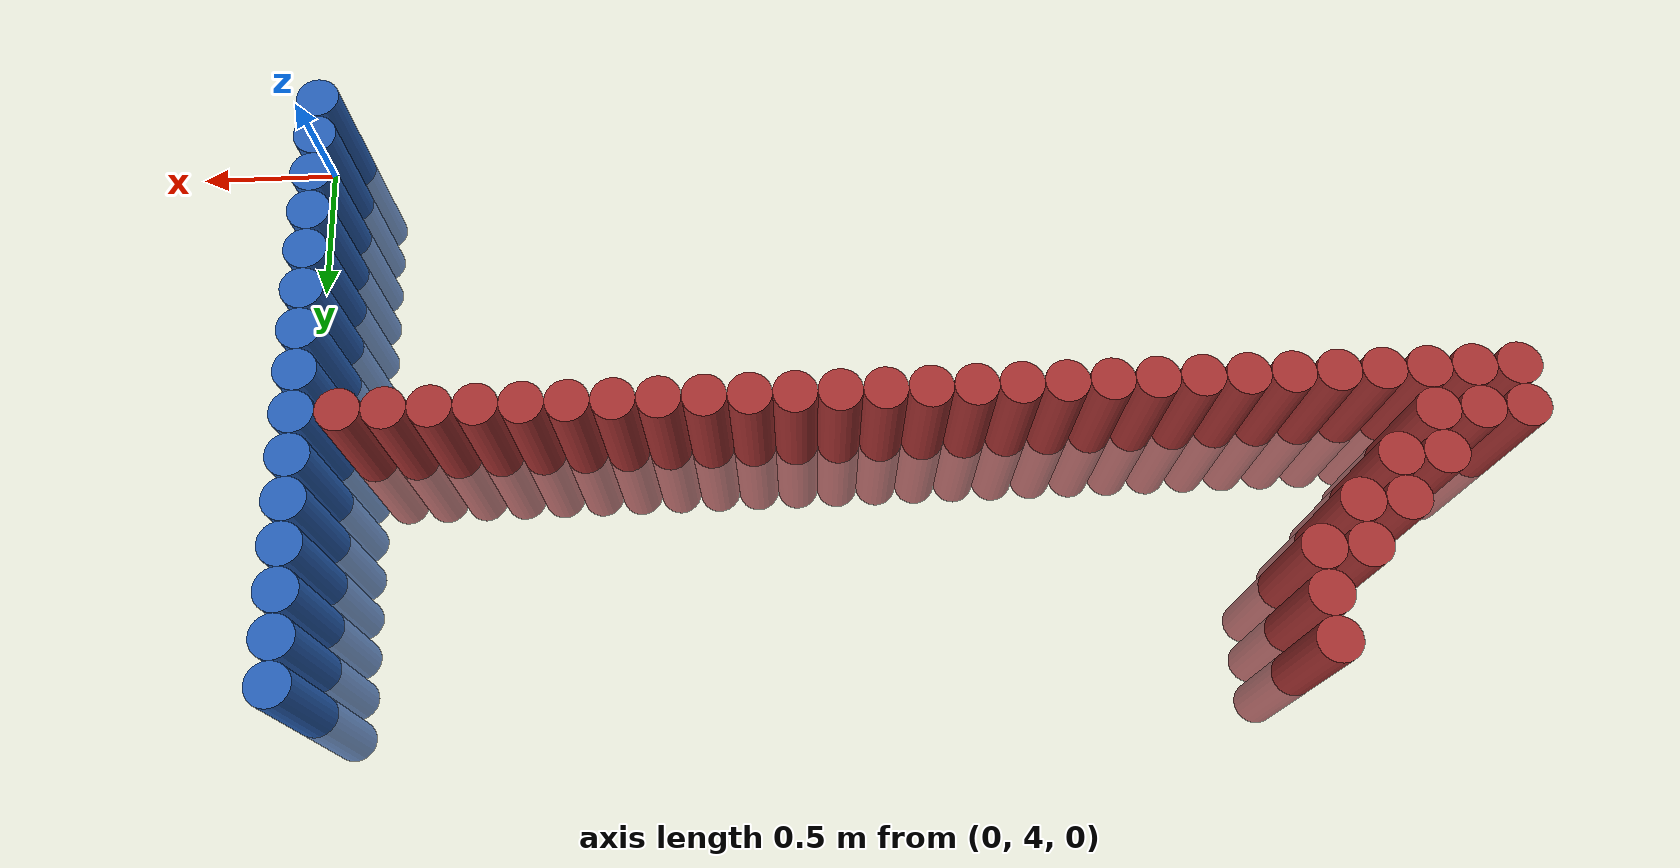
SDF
<sdf version="1.6">
 <world name="default">
  <model name="ground_plane">
   <static>1</static>
   <link name="link">
    <collision name="collision">
     <geometry><plane><normal>0 0 1</normal><size>100 100</size></plane></geometry>
     <surface><friction><ode><mu>100</mu><mu2>50</mu2></ode></friction></surface>
    </collision>
    <visual name="visual">
     <cast_shadows>0</cast_shadows>
     <geometry><plane><normal>0 0 1</normal><size>100 100</size></plane></geometry>
     <material>
      <script><uri>file://media/materials/scripts/gazebo.material</uri><name>Gazebo/Grey</name></script>
     </material>
    </visual>
   </link>
  </model>
  <model name="unit_cylinder_109">
   <static>1</static>
   <pose>-0.075000 3.975000 0.000000 0.000000 0.000000 0.000000</pose>
   <link name="link">
    <inertial>
     <mass>1</mass>
     <inertia><ixx>0.145833</ixx><ixy>0</ixy><ixz>0</ixz><iyy>0.145833</iyy><iyz>0</iyz><izz>0.125</izz></inertia>
    </inertial>
    <collision name="collision">
     <geometry><cylinder><radius>0.075000</radius><length>1</length></cylinder></geometry>
    </collision>
    <visual name="visual">
     <geometry><cylinder><radius>0.075000</radius><length>1</length></cylinder></geometry>
     <material>
      <ambient>0.152000 0.379000 0.720000 1</ambient>
      <diffuse>0.152000 0.379000 0.720000 1</diffuse>
     </material>
     <material>
      <script><name>Gazebo/Grey</name><uri>file://media/materials/scripts/gazebo.material</uri></script>
     </material>
    </visual>
   </link>
  </model>
  <model name="unit_cylinder_111">
   <static>1</static>
   <pose>-0.075000 4.125000 0.000000 0.000000 0.000000 0.000000</pose>
   <link name="link">
    <inertial>
     <mass>1</mass>
     <inertia><ixx>0.145833</ixx><ixy>0</ixy><ixz>0</ixz><iyy>0.145833</iyy><iyz>0</iyz><izz>0.125</izz></inertia>
    </inertial>
    <collision name="collision">
     <geometry><cylinder><radius>0.075000</radius><length>1</length></cylinder></geometry>
    </collision>
    <visual name="visual">
     <geometry><cylinder><radius>0.075000</radius><length>1</length></cylinder></geometry>
     <material>
      <ambient>0.152000 0.379000 0.720000 1</ambient>
      <diffuse>0.152000 0.379000 0.720000 1</diffuse>
     </material>
     <material>
      <script><name>Gazebo/Grey</name><uri>file://media/materials/scripts/gazebo.material</uri></script>
     </material>
    </visual>
   </link>
  </model>
  <model name="unit_cylinder_113">
   <static>1</static>
   <pose>-0.075000 4.275000 0.000000 0.000000 0.000000 0.000000</pose>
   <link name="link">
    <inertial>
     <mass>1</mass>
     <inertia><ixx>0.145833</ixx><ixy>0</ixy><ixz>0</ixz><iyy>0.145833</iyy><iyz>0</iyz><izz>0.125</izz></inertia>
    </inertial>
    <collision name="collision">
     <geometry><cylinder><radius>0.075000</radius><length>1</length></cylinder></geometry>
    </collision>
    <visual name="visual">
     <geometry><cylinder><radius>0.075000</radius><length>1</length></cylinder></geometry>
     <material>
      <ambient>0.152000 0.379000 0.720000 1</ambient>
      <diffuse>0.152000 0.379000 0.720000 1</diffuse>
     </material>
     <material>
      <script><name>Gazebo/Grey</name><uri>file://media/materials/scripts/gazebo.material</uri></script>
     </material>
    </visual>
   </link>
  </model>
  <model name="unit_cylinder_115">
   <static>1</static>
   <pose>-0.075000 4.425000 0.000000 0.000000 0.000000 0.000000</pose>
   <link name="link">
    <inertial>
     <mass>1</mass>
     <inertia><ixx>0.145833</ixx><ixy>0</ixy><ixz>0</ixz><iyy>0.145833</iyy><iyz>0</iyz><izz>0.125</izz></inertia>
    </inertial>
    <collision name="collision">
     <geometry><cylinder><radius>0.075000</radius><length>1</length></cylinder></geometry>
    </collision>
    <visual name="visual">
     <geometry><cylinder><radius>0.075000</radius><length>1</length></cylinder></geometry>
     <material>
      <ambient>0.152000 0.379000 0.720000 1</ambient>
      <diffuse>0.152000 0.379000 0.720000 1</diffuse>
     </material>
     <material>
      <script><name>Gazebo/Grey</name><uri>file://media/materials/scripts/gazebo.material</uri></script>
     </material>
    </visual>
   </link>
  </model>
  <model name="unit_cylinder_117">
   <static>1</static>
   <pose>-0.075000 4.575000 0.000000 0.000000 0.000000 0.000000</pose>
   <link name="link">
    <inertial>
     <mass>1</mass>
     <inertia><ixx>0.145833</ixx><ixy>0</ixy><ixz>0</ixz><iyy>0.145833</iyy><iyz>0</iyz><izz>0.125</izz></inertia>
    </inertial>
    <collision name="collision">
     <geometry><cylinder><radius>0.075000</radius><length>1</length></cylinder></geometry>
    </collision>
    <visual name="visual">
     <geometry><cylinder><radius>0.075000</radius><length>1</length></cylinder></geometry>
     <material>
      <ambient>0.152000 0.379000 0.720000 1</ambient>
      <diffuse>0.152000 0.379000 0.720000 1</diffuse>
     </material>
     <material>
      <script><name>Gazebo/Grey</name><uri>file://media/materials/scripts/gazebo.material</uri></script>
     </material>
    </visual>
   </link>
  </model>
  <model name="unit_cylinder_119">
   <static>1</static>
   <pose>-0.075000 4.725000 0.000000 0.000000 0.000000 0.000000</pose>
   <link name="link">
    <inertial>
     <mass>1</mass>
     <inertia><ixx>0.145833</ixx><ixy>0</ixy><ixz>0</ixz><iyy>0.145833</iyy><iyz>0</iyz><izz>0.125</izz></inertia>
    </inertial>
    <collision name="collision">
     <geometry><cylinder><radius>0.075000</radius><length>1</length></cylinder></geometry>
    </collision>
    <visual name="visual">
     <geometry><cylinder><radius>0.075000</radius><length>1</length></cylinder></geometry>
     <material>
      <ambient>0.152000 0.379000 0.720000 1</ambient>
      <diffuse>0.152000 0.379000 0.720000 1</diffuse>
     </material>
     <material>
      <script><name>Gazebo/Grey</name><uri>file://media/materials/scripts/gazebo.material</uri></script>
     </material>
    </visual>
   </link>
  </model>
  <model name="unit_cylinder_121">
   <static>1</static>
   <pose>-0.075000 4.875000 0.000000 0.000000 0.000000 0.000000</pose>
   <link name="link">
    <inertial>
     <mass>1</mass>
     <inertia><ixx>0.145833</ixx><ixy>0</ixy><ixz>0</ixz><iyy>0.145833</iyy><iyz>0</iyz><izz>0.125</izz></inertia>
    </inertial>
    <collision name="collision">
     <geometry><cylinder><radius>0.075000</radius><length>1</length></cylinder></geometry>
    </collision>
    <visual name="visual">
     <geometry><cylinder><radius>0.075000</radius><length>1</length></cylinder></geometry>
     <material>
      <ambient>0.152000 0.379000 0.720000 1</ambient>
      <diffuse>0.152000 0.379000 0.720000 1</diffuse>
     </material>
     <material>
      <script><name>Gazebo/Grey</name><uri>file://media/materials/scripts/gazebo.material</uri></script>
     </material>
    </visual>
   </link>
  </model>
  <model name="unit_cylinder_123">
   <static>1</static>
   <pose>-0.075000 5.025000 0.000000 0.000000 0.000000 0.000000</pose>
   <link name="link">
    <inertial>
     <mass>1</mass>
     <inertia><ixx>0.145833</ixx><ixy>0</ixy><ixz>0</ixz><iyy>0.145833</iyy><iyz>0</iyz><izz>0.125</izz></inertia>
    </inertial>
    <collision name="collision">
     <geometry><cylinder><radius>0.075000</radius><length>1</length></cylinder></geometry>
    </collision>
    <visual name="visual">
     <geometry><cylinder><radius>0.075000</radius><length>1</length></cylinder></geometry>
     <material>
      <ambient>0.152000 0.379000 0.720000 1</ambient>
      <diffuse>0.152000 0.379000 0.720000 1</diffuse>
     </material>
     <material>
      <script><name>Gazebo/Grey</name><uri>file://media/materials/scripts/gazebo.material</uri></script>
     </material>
    </visual>
   </link>
  </model>
  <model name="unit_cylinder_287">
   <static>1</static>
   <pose>-4.125000 5.175000 0.000000 0.000000 0.000000 0.000000</pose>
   <link name="link">
    <inertial>
     <mass>1</mass>
     <inertia><ixx>0.145833</ixx><ixy>0</ixy><ixz>0</ixz><iyy>0.145833</iyy><iyz>0</iyz><izz>0.125</izz></inertia>
    </inertial>
    <collision name="collision">
     <geometry><cylinder><radius>0.075000</radius><length>1</length></cylinder></geometry>
    </collision>
    <visual name="visual">
     <geometry><cylinder><radius>0.075000</radius><length>1</length></cylinder></geometry>
     <material>
      <ambient>0.648000 0.192000 0.192000 1</ambient>
      <diffuse>0.648000 0.192000 0.192000 1</diffuse>
     </material>
     <material>
      <script><name>Gazebo/Grey</name><uri>file://media/materials/scripts/gazebo.material</uri></script>
     </material>
    </visual>
   </link>
  </model>
  <model name="unit_cylinder_288">
   <static>1</static>
   <pose>-4.125000 5.325000 0.000000 0.000000 0.000000 0.000000</pose>
   <link name="link">
    <inertial>
     <mass>1</mass>
     <inertia><ixx>0.145833</ixx><ixy>0</ixy><ixz>0</ixz><iyy>0.145833</iyy><iyz>0</iyz><izz>0.125</izz></inertia>
    </inertial>
    <collision name="collision">
     <geometry><cylinder><radius>0.075000</radius><length>1</length></cylinder></geometry>
    </collision>
    <visual name="visual">
     <geometry><cylinder><radius>0.075000</radius><length>1</length></cylinder></geometry>
     <material>
      <ambient>0.648000 0.192000 0.192000 1</ambient>
      <diffuse>0.648000 0.192000 0.192000 1</diffuse>
     </material>
     <material>
      <script><name>Gazebo/Grey</name><uri>file://media/materials/scripts/gazebo.material</uri></script>
     </material>
    </visual>
   </link>
  </model>
  <model name="unit_cylinder_293">
   <static>1</static>
   <pose>-3.975000 5.175000 0.000000 0.000000 0.000000 0.000000</pose>
   <link name="link">
    <inertial>
     <mass>1</mass>
     <inertia><ixx>0.145833</ixx><ixy>0</ixy><ixz>0</ixz><iyy>0.145833</iyy><iyz>0</iyz><izz>0.125</izz></inertia>
    </inertial>
    <collision name="collision">
     <geometry><cylinder><radius>0.075000</radius><length>1</length></cylinder></geometry>
    </collision>
    <visual name="visual">
     <geometry><cylinder><radius>0.075000</radius><length>1</length></cylinder></geometry>
     <material>
      <ambient>0.648000 0.192000 0.192000 1</ambient>
      <diffuse>0.648000 0.192000 0.192000 1</diffuse>
     </material>
     <material>
      <script><name>Gazebo/Grey</name><uri>file://media/materials/scripts/gazebo.material</uri></script>
     </material>
    </visual>
   </link>
  </model>
  <model name="unit_cylinder_294">
   <static>1</static>
   <pose>-3.975000 5.325000 0.000000 0.000000 0.000000 0.000000</pose>
   <link name="link">
    <inertial>
     <mass>1</mass>
     <inertia><ixx>0.145833</ixx><ixy>0</ixy><ixz>0</ixz><iyy>0.145833</iyy><iyz>0</iyz><izz>0.125</izz></inertia>
    </inertial>
    <collision name="collision">
     <geometry><cylinder><radius>0.075000</radius><length>1</length></cylinder></geometry>
    </collision>
    <visual name="visual">
     <geometry><cylinder><radius>0.075000</radius><length>1</length></cylinder></geometry>
     <material>
      <ambient>0.648000 0.192000 0.192000 1</ambient>
      <diffuse>0.648000 0.192000 0.192000 1</diffuse>
     </material>
     <material>
      <script><name>Gazebo/Grey</name><uri>file://media/materials/scripts/gazebo.material</uri></script>
     </material>
    </visual>
   </link>
  </model>
  <model name="unit_cylinder_301">
   <static>1</static>
   <pose>-3.825000 5.175000 0.000000 0.000000 0.000000 0.000000</pose>
   <link name="link">
    <inertial>
     <mass>1</mass>
     <inertia><ixx>0.145833</ixx><ixy>0</ixy><ixz>0</ixz><iyy>0.145833</iyy><iyz>0</iyz><izz>0.125</izz></inertia>
    </inertial>
    <collision name="collision">
     <geometry><cylinder><radius>0.075000</radius><length>1</length></cylinder></geometry>
    </collision>
    <visual name="visual">
     <geometry><cylinder><radius>0.075000</radius><length>1</length></cylinder></geometry>
     <material>
      <ambient>0.648000 0.192000 0.192000 1</ambient>
      <diffuse>0.648000 0.192000 0.192000 1</diffuse>
     </material>
     <material>
      <script><name>Gazebo/Grey</name><uri>file://media/materials/scripts/gazebo.material</uri></script>
     </material>
    </visual>
   </link>
  </model>
  <model name="unit_cylinder_302">
   <static>1</static>
   <pose>-3.825000 5.325000 0.000000 0.000000 0.000000 0.000000</pose>
   <link name="link">
    <inertial>
     <mass>1</mass>
     <inertia><ixx>0.145833</ixx><ixy>0</ixy><ixz>0</ixz><iyy>0.145833</iyy><iyz>0</iyz><izz>0.125</izz></inertia>
    </inertial>
    <collision name="collision">
     <geometry><cylinder><radius>0.075000</radius><length>1</length></cylinder></geometry>
    </collision>
    <visual name="visual">
     <geometry><cylinder><radius>0.075000</radius><length>1</length></cylinder></geometry>
     <material>
      <ambient>0.648000 0.192000 0.192000 1</ambient>
      <diffuse>0.648000 0.192000 0.192000 1</diffuse>
     </material>
     <material>
      <script><name>Gazebo/Grey</name><uri>file://media/materials/scripts/gazebo.material</uri></script>
     </material>
    </visual>
   </link>
  </model>
  <model name="unit_cylinder_303">
   <static>1</static>
   <pose>-3.825000 5.475000 0.000000 0.000000 0.000000 0.000000</pose>
   <link name="link">
    <inertial>
     <mass>1</mass>
     <inertia><ixx>0.145833</ixx><ixy>0</ixy><ixz>0</ixz><iyy>0.145833</iyy><iyz>0</iyz><izz>0.125</izz></inertia>
    </inertial>
    <collision name="collision">
     <geometry><cylinder><radius>0.075000</radius><length>1</length></cylinder></geometry>
    </collision>
    <visual name="visual">
     <geometry><cylinder><radius>0.075000</radius><length>1</length></cylinder></geometry>
     <material>
      <ambient>0.648000 0.192000 0.192000 1</ambient>
      <diffuse>0.648000 0.192000 0.192000 1</diffuse>
     </material>
     <material>
      <script><name>Gazebo/Grey</name><uri>file://media/materials/scripts/gazebo.material</uri></script>
     </material>
    </visual>
   </link>
  </model>
  <model name="unit_cylinder_310">
   <static>1</static>
   <pose>-3.675000 5.175000 0.000000 0.000000 0.000000 0.000000</pose>
   <link name="link">
    <inertial>
     <mass>1</mass>
     <inertia><ixx>0.145833</ixx><ixy>0</ixy><ixz>0</ixz><iyy>0.145833</iyy><iyz>0</iyz><izz>0.125</izz></inertia>
    </inertial>
    <collision name="collision">
     <geometry><cylinder><radius>0.075000</radius><length>1</length></cylinder></geometry>
    </collision>
    <visual name="visual">
     <geometry><cylinder><radius>0.075000</radius><length>1</length></cylinder></geometry>
     <material>
      <ambient>0.648000 0.192000 0.192000 1</ambient>
      <diffuse>0.648000 0.192000 0.192000 1</diffuse>
     </material>
     <material>
      <script><name>Gazebo/Grey</name><uri>file://media/materials/scripts/gazebo.material</uri></script>
     </material>
    </visual>
   </link>
  </model>
  <model name="unit_cylinder_311">
   <static>1</static>
   <pose>-3.675000 5.475000 0.000000 0.000000 0.000000 0.000000</pose>
   <link name="link">
    <inertial>
     <mass>1</mass>
     <inertia><ixx>0.145833</ixx><ixy>0</ixy><ixz>0</ixz><iyy>0.145833</iyy><iyz>0</iyz><izz>0.125</izz></inertia>
    </inertial>
    <collision name="collision">
     <geometry><cylinder><radius>0.075000</radius><length>1</length></cylinder></geometry>
    </collision>
    <visual name="visual">
     <geometry><cylinder><radius>0.075000</radius><length>1</length></cylinder></geometry>
     <material>
      <ambient>0.648000 0.192000 0.192000 1</ambient>
      <diffuse>0.648000 0.192000 0.192000 1</diffuse>
     </material>
     <material>
      <script><name>Gazebo/Grey</name><uri>file://media/materials/scripts/gazebo.material</uri></script>
     </material>
    </visual>
   </link>
  </model>
  <model name="unit_cylinder_312">
   <static>1</static>
   <pose>-3.675000 5.625000 0.000000 0.000000 0.000000 0.000000</pose>
   <link name="link">
    <inertial>
     <mass>1</mass>
     <inertia><ixx>0.145833</ixx><ixy>0</ixy><ixz>0</ixz><iyy>0.145833</iyy><iyz>0</iyz><izz>0.125</izz></inertia>
    </inertial>
    <collision name="collision">
     <geometry><cylinder><radius>0.075000</radius><length>1</length></cylinder></geometry>
    </collision>
    <visual name="visual">
     <geometry><cylinder><radius>0.075000</radius><length>1</length></cylinder></geometry>
     <material>
      <ambient>0.648000 0.192000 0.192000 1</ambient>
      <diffuse>0.648000 0.192000 0.192000 1</diffuse>
     </material>
     <material>
      <script><name>Gazebo/Grey</name><uri>file://media/materials/scripts/gazebo.material</uri></script>
     </material>
    </visual>
   </link>
  </model>
  <model name="unit_cylinder_319">
   <static>1</static>
   <pose>-3.525000 5.175000 0.000000 0.000000 0.000000 0.000000</pose>
   <link name="link">
    <inertial>
     <mass>1</mass>
     <inertia><ixx>0.145833</ixx><ixy>0</ixy><ixz>0</ixz><iyy>0.145833</iyy><iyz>0</iyz><izz>0.125</izz></inertia>
    </inertial>
    <collision name="collision">
     <geometry><cylinder><radius>0.075000</radius><length>1</length></cylinder></geometry>
    </collision>
    <visual name="visual">
     <geometry><cylinder><radius>0.075000</radius><length>1</length></cylinder></geometry>
     <material>
      <ambient>0.648000 0.192000 0.192000 1</ambient>
      <diffuse>0.648000 0.192000 0.192000 1</diffuse>
     </material>
     <material>
      <script><name>Gazebo/Grey</name><uri>file://media/materials/scripts/gazebo.material</uri></script>
     </material>
    </visual>
   </link>
  </model>
  <model name="unit_cylinder_320">
   <static>1</static>
   <pose>-3.525000 5.625000 0.000000 0.000000 0.000000 0.000000</pose>
   <link name="link">
    <inertial>
     <mass>1</mass>
     <inertia><ixx>0.145833</ixx><ixy>0</ixy><ixz>0</ixz><iyy>0.145833</iyy><iyz>0</iyz><izz>0.125</izz></inertia>
    </inertial>
    <collision name="collision">
     <geometry><cylinder><radius>0.075000</radius><length>1</length></cylinder></geometry>
    </collision>
    <visual name="visual">
     <geometry><cylinder><radius>0.075000</radius><length>1</length></cylinder></geometry>
     <material>
      <ambient>0.648000 0.192000 0.192000 1</ambient>
      <diffuse>0.648000 0.192000 0.192000 1</diffuse>
     </material>
     <material>
      <script><name>Gazebo/Grey</name><uri>file://media/materials/scripts/gazebo.material</uri></script>
     </material>
    </visual>
   </link>
  </model>
  <model name="unit_cylinder_321">
   <static>1</static>
   <pose>-3.525000 5.775000 0.000000 0.000000 0.000000 0.000000</pose>
   <link name="link">
    <inertial>
     <mass>1</mass>
     <inertia><ixx>0.145833</ixx><ixy>0</ixy><ixz>0</ixz><iyy>0.145833</iyy><iyz>0</iyz><izz>0.125</izz></inertia>
    </inertial>
    <collision name="collision">
     <geometry><cylinder><radius>0.075000</radius><length>1</length></cylinder></geometry>
    </collision>
    <visual name="visual">
     <geometry><cylinder><radius>0.075000</radius><length>1</length></cylinder></geometry>
     <material>
      <ambient>0.648000 0.192000 0.192000 1</ambient>
      <diffuse>0.648000 0.192000 0.192000 1</diffuse>
     </material>
     <material>
      <script><name>Gazebo/Grey</name><uri>file://media/materials/scripts/gazebo.material</uri></script>
     </material>
    </visual>
   </link>
  </model>
  <model name="unit_cylinder_325">
   <static>1</static>
   <pose>-3.375000 5.175000 0.000000 0.000000 0.000000 0.000000</pose>
   <link name="link">
    <inertial>
     <mass>1</mass>
     <inertia><ixx>0.145833</ixx><ixy>0</ixy><ixz>0</ixz><iyy>0.145833</iyy><iyz>0</iyz><izz>0.125</izz></inertia>
    </inertial>
    <collision name="collision">
     <geometry><cylinder><radius>0.075000</radius><length>1</length></cylinder></geometry>
    </collision>
    <visual name="visual">
     <geometry><cylinder><radius>0.075000</radius><length>1</length></cylinder></geometry>
     <material>
      <ambient>0.648000 0.192000 0.192000 1</ambient>
      <diffuse>0.648000 0.192000 0.192000 1</diffuse>
     </material>
     <material>
      <script><name>Gazebo/Grey</name><uri>file://media/materials/scripts/gazebo.material</uri></script>
     </material>
    </visual>
   </link>
  </model>
  <model name="unit_cylinder_326">
   <static>1</static>
   <pose>-3.375000 5.775000 0.000000 0.000000 0.000000 0.000000</pose>
   <link name="link">
    <inertial>
     <mass>1</mass>
     <inertia><ixx>0.145833</ixx><ixy>0</ixy><ixz>0</ixz><iyy>0.145833</iyy><iyz>0</iyz><izz>0.125</izz></inertia>
    </inertial>
    <collision name="collision">
     <geometry><cylinder><radius>0.075000</radius><length>1</length></cylinder></geometry>
    </collision>
    <visual name="visual">
     <geometry><cylinder><radius>0.075000</radius><length>1</length></cylinder></geometry>
     <material>
      <ambient>0.648000 0.192000 0.192000 1</ambient>
      <diffuse>0.648000 0.192000 0.192000 1</diffuse>
     </material>
     <material>
      <script><name>Gazebo/Grey</name><uri>file://media/materials/scripts/gazebo.material</uri></script>
     </material>
    </visual>
   </link>
  </model>
  <model name="unit_cylinder_327">
   <static>1</static>
   <pose>-3.375000 5.925000 0.000000 0.000000 0.000000 0.000000</pose>
   <link name="link">
    <inertial>
     <mass>1</mass>
     <inertia><ixx>0.145833</ixx><ixy>0</ixy><ixz>0</ixz><iyy>0.145833</iyy><iyz>0</iyz><izz>0.125</izz></inertia>
    </inertial>
    <collision name="collision">
     <geometry><cylinder><radius>0.075000</radius><length>1</length></cylinder></geometry>
    </collision>
    <visual name="visual">
     <geometry><cylinder><radius>0.075000</radius><length>1</length></cylinder></geometry>
     <material>
      <ambient>0.648000 0.192000 0.192000 1</ambient>
      <diffuse>0.648000 0.192000 0.192000 1</diffuse>
     </material>
     <material>
      <script><name>Gazebo/Grey</name><uri>file://media/materials/scripts/gazebo.material</uri></script>
     </material>
    </visual>
   </link>
  </model>
  <model name="unit_cylinder_328">
   <static>1</static>
   <pose>-3.375000 6.075000 0.000000 0.000000 0.000000 0.000000</pose>
   <link name="link">
    <inertial>
     <mass>1</mass>
     <inertia><ixx>0.145833</ixx><ixy>0</ixy><ixz>0</ixz><iyy>0.145833</iyy><iyz>0</iyz><izz>0.125</izz></inertia>
    </inertial>
    <collision name="collision">
     <geometry><cylinder><radius>0.075000</radius><length>1</length></cylinder></geometry>
    </collision>
    <visual name="visual">
     <geometry><cylinder><radius>0.075000</radius><length>1</length></cylinder></geometry>
     <material>
      <ambient>0.648000 0.192000 0.192000 1</ambient>
      <diffuse>0.648000 0.192000 0.192000 1</diffuse>
     </material>
     <material>
      <script><name>Gazebo/Grey</name><uri>file://media/materials/scripts/gazebo.material</uri></script>
     </material>
    </visual>
   </link>
  </model>
  <model name="unit_cylinder_334">
   <static>1</static>
   <pose>-3.225000 5.175000 0.000000 0.000000 0.000000 0.000000</pose>
   <link name="link">
    <inertial>
     <mass>1</mass>
     <inertia><ixx>0.145833</ixx><ixy>0</ixy><ixz>0</ixz><iyy>0.145833</iyy><iyz>0</iyz><izz>0.125</izz></inertia>
    </inertial>
    <collision name="collision">
     <geometry><cylinder><radius>0.075000</radius><length>1</length></cylinder></geometry>
    </collision>
    <visual name="visual">
     <geometry><cylinder><radius>0.075000</radius><length>1</length></cylinder></geometry>
     <material>
      <ambient>0.648000 0.192000 0.192000 1</ambient>
      <diffuse>0.648000 0.192000 0.192000 1</diffuse>
     </material>
     <material>
      <script><name>Gazebo/Grey</name><uri>file://media/materials/scripts/gazebo.material</uri></script>
     </material>
    </visual>
   </link>
  </model>
  <model name="unit_cylinder_336">
   <static>1</static>
   <pose>-3.075000 5.175000 0.000000 0.000000 0.000000 0.000000</pose>
   <link name="link">
    <inertial>
     <mass>1</mass>
     <inertia><ixx>0.145833</ixx><ixy>0</ixy><ixz>0</ixz><iyy>0.145833</iyy><iyz>0</iyz><izz>0.125</izz></inertia>
    </inertial>
    <collision name="collision">
     <geometry><cylinder><radius>0.075000</radius><length>1</length></cylinder></geometry>
    </collision>
    <visual name="visual">
     <geometry><cylinder><radius>0.075000</radius><length>1</length></cylinder></geometry>
     <material>
      <ambient>0.648000 0.192000 0.192000 1</ambient>
      <diffuse>0.648000 0.192000 0.192000 1</diffuse>
     </material>
     <material>
      <script><name>Gazebo/Grey</name><uri>file://media/materials/scripts/gazebo.material</uri></script>
     </material>
    </visual>
   </link>
  </model>
  <model name="unit_cylinder_338">
   <static>1</static>
   <pose>-2.925000 5.175000 0.000000 0.000000 0.000000 0.000000</pose>
   <link name="link">
    <inertial>
     <mass>1</mass>
     <inertia><ixx>0.145833</ixx><ixy>0</ixy><ixz>0</ixz><iyy>0.145833</iyy><iyz>0</iyz><izz>0.125</izz></inertia>
    </inertial>
    <collision name="collision">
     <geometry><cylinder><radius>0.075000</radius><length>1</length></cylinder></geometry>
    </collision>
    <visual name="visual">
     <geometry><cylinder><radius>0.075000</radius><length>1</length></cylinder></geometry>
     <material>
      <ambient>0.648000 0.192000 0.192000 1</ambient>
      <diffuse>0.648000 0.192000 0.192000 1</diffuse>
     </material>
     <material>
      <script><name>Gazebo/Grey</name><uri>file://media/materials/scripts/gazebo.material</uri></script>
     </material>
    </visual>
   </link>
  </model>
  <model name="unit_cylinder_340">
   <static>1</static>
   <pose>-2.775000 5.175000 0.000000 0.000000 0.000000 0.000000</pose>
   <link name="link">
    <inertial>
     <mass>1</mass>
     <inertia><ixx>0.145833</ixx><ixy>0</ixy><ixz>0</ixz><iyy>0.145833</iyy><iyz>0</iyz><izz>0.125</izz></inertia>
    </inertial>
    <collision name="collision">
     <geometry><cylinder><radius>0.075000</radius><length>1</length></cylinder></geometry>
    </collision>
    <visual name="visual">
     <geometry><cylinder><radius>0.075000</radius><length>1</length></cylinder></geometry>
     <material>
      <ambient>0.648000 0.192000 0.192000 1</ambient>
      <diffuse>0.648000 0.192000 0.192000 1</diffuse>
     </material>
     <material>
      <script><name>Gazebo/Grey</name><uri>file://media/materials/scripts/gazebo.material</uri></script>
     </material>
    </visual>
   </link>
  </model>
  <model name="unit_cylinder_343">
   <static>1</static>
   <pose>-2.625000 5.175000 0.000000 0.000000 0.000000 0.000000</pose>
   <link name="link">
    <inertial>
     <mass>1</mass>
     <inertia><ixx>0.145833</ixx><ixy>0</ixy><ixz>0</ixz><iyy>0.145833</iyy><iyz>0</iyz><izz>0.125</izz></inertia>
    </inertial>
    <collision name="collision">
     <geometry><cylinder><radius>0.075000</radius><length>1</length></cylinder></geometry>
    </collision>
    <visual name="visual">
     <geometry><cylinder><radius>0.075000</radius><length>1</length></cylinder></geometry>
     <material>
      <ambient>0.648000 0.192000 0.192000 1</ambient>
      <diffuse>0.648000 0.192000 0.192000 1</diffuse>
     </material>
     <material>
      <script><name>Gazebo/Grey</name><uri>file://media/materials/scripts/gazebo.material</uri></script>
     </material>
    </visual>
   </link>
  </model>
  <model name="unit_cylinder_347">
   <static>1</static>
   <pose>-2.475000 5.175000 0.000000 0.000000 0.000000 0.000000</pose>
   <link name="link">
    <inertial>
     <mass>1</mass>
     <inertia><ixx>0.145833</ixx><ixy>0</ixy><ixz>0</ixz><iyy>0.145833</iyy><iyz>0</iyz><izz>0.125</izz></inertia>
    </inertial>
    <collision name="collision">
     <geometry><cylinder><radius>0.075000</radius><length>1</length></cylinder></geometry>
    </collision>
    <visual name="visual">
     <geometry><cylinder><radius>0.075000</radius><length>1</length></cylinder></geometry>
     <material>
      <ambient>0.648000 0.192000 0.192000 1</ambient>
      <diffuse>0.648000 0.192000 0.192000 1</diffuse>
     </material>
     <material>
      <script><name>Gazebo/Grey</name><uri>file://media/materials/scripts/gazebo.material</uri></script>
     </material>
    </visual>
   </link>
  </model>
  <model name="unit_cylinder_350">
   <static>1</static>
   <pose>-2.325000 5.175000 0.000000 0.000000 0.000000 0.000000</pose>
   <link name="link">
    <inertial>
     <mass>1</mass>
     <inertia><ixx>0.145833</ixx><ixy>0</ixy><ixz>0</ixz><iyy>0.145833</iyy><iyz>0</iyz><izz>0.125</izz></inertia>
    </inertial>
    <collision name="collision">
     <geometry><cylinder><radius>0.075000</radius><length>1</length></cylinder></geometry>
    </collision>
    <visual name="visual">
     <geometry><cylinder><radius>0.075000</radius><length>1</length></cylinder></geometry>
     <material>
      <ambient>0.648000 0.192000 0.192000 1</ambient>
      <diffuse>0.648000 0.192000 0.192000 1</diffuse>
     </material>
     <material>
      <script><name>Gazebo/Grey</name><uri>file://media/materials/scripts/gazebo.material</uri></script>
     </material>
    </visual>
   </link>
  </model>
  <model name="unit_cylinder_356">
   <static>1</static>
   <pose>-2.175000 5.175000 0.000000 0.000000 0.000000 0.000000</pose>
   <link name="link">
    <inertial>
     <mass>1</mass>
     <inertia><ixx>0.145833</ixx><ixy>0</ixy><ixz>0</ixz><iyy>0.145833</iyy><iyz>0</iyz><izz>0.125</izz></inertia>
    </inertial>
    <collision name="collision">
     <geometry><cylinder><radius>0.075000</radius><length>1</length></cylinder></geometry>
    </collision>
    <visual name="visual">
     <geometry><cylinder><radius>0.075000</radius><length>1</length></cylinder></geometry>
     <material>
      <ambient>0.648000 0.192000 0.192000 1</ambient>
      <diffuse>0.648000 0.192000 0.192000 1</diffuse>
     </material>
     <material>
      <script><name>Gazebo/Grey</name><uri>file://media/materials/scripts/gazebo.material</uri></script>
     </material>
    </visual>
   </link>
  </model>
  <model name="unit_cylinder_358">
   <static>1</static>
   <pose>-2.025000 5.175000 0.000000 0.000000 0.000000 0.000000</pose>
   <link name="link">
    <inertial>
     <mass>1</mass>
     <inertia><ixx>0.145833</ixx><ixy>0</ixy><ixz>0</ixz><iyy>0.145833</iyy><iyz>0</iyz><izz>0.125</izz></inertia>
    </inertial>
    <collision name="collision">
     <geometry><cylinder><radius>0.075000</radius><length>1</length></cylinder></geometry>
    </collision>
    <visual name="visual">
     <geometry><cylinder><radius>0.075000</radius><length>1</length></cylinder></geometry>
     <material>
      <ambient>0.648000 0.192000 0.192000 1</ambient>
      <diffuse>0.648000 0.192000 0.192000 1</diffuse>
     </material>
     <material>
      <script><name>Gazebo/Grey</name><uri>file://media/materials/scripts/gazebo.material</uri></script>
     </material>
    </visual>
   </link>
  </model>
  <model name="unit_cylinder_372">
   <static>1</static>
   <pose>-1.875000 5.175000 0.000000 0.000000 0.000000 0.000000</pose>
   <link name="link">
    <inertial>
     <mass>1</mass>
     <inertia><ixx>0.145833</ixx><ixy>0</ixy><ixz>0</ixz><iyy>0.145833</iyy><iyz>0</iyz><izz>0.125</izz></inertia>
    </inertial>
    <collision name="collision">
     <geometry><cylinder><radius>0.075000</radius><length>1</length></cylinder></geometry>
    </collision>
    <visual name="visual">
     <geometry><cylinder><radius>0.075000</radius><length>1</length></cylinder></geometry>
     <material>
      <ambient>0.648000 0.192000 0.192000 1</ambient>
      <diffuse>0.648000 0.192000 0.192000 1</diffuse>
     </material>
     <material>
      <script><name>Gazebo/Grey</name><uri>file://media/materials/scripts/gazebo.material</uri></script>
     </material>
    </visual>
   </link>
  </model>
  <model name="unit_cylinder_374">
   <static>1</static>
   <pose>-1.725000 5.175000 0.000000 0.000000 0.000000 0.000000</pose>
   <link name="link">
    <inertial>
     <mass>1</mass>
     <inertia><ixx>0.145833</ixx><ixy>0</ixy><ixz>0</ixz><iyy>0.145833</iyy><iyz>0</iyz><izz>0.125</izz></inertia>
    </inertial>
    <collision name="collision">
     <geometry><cylinder><radius>0.075000</radius><length>1</length></cylinder></geometry>
    </collision>
    <visual name="visual">
     <geometry><cylinder><radius>0.075000</radius><length>1</length></cylinder></geometry>
     <material>
      <ambient>0.648000 0.192000 0.192000 1</ambient>
      <diffuse>0.648000 0.192000 0.192000 1</diffuse>
     </material>
     <material>
      <script><name>Gazebo/Grey</name><uri>file://media/materials/scripts/gazebo.material</uri></script>
     </material>
    </visual>
   </link>
  </model>
  <model name="unit_cylinder_376">
   <static>1</static>
   <pose>-1.575000 5.175000 0.000000 0.000000 0.000000 0.000000</pose>
   <link name="link">
    <inertial>
     <mass>1</mass>
     <inertia><ixx>0.145833</ixx><ixy>0</ixy><ixz>0</ixz><iyy>0.145833</iyy><iyz>0</iyz><izz>0.125</izz></inertia>
    </inertial>
    <collision name="collision">
     <geometry><cylinder><radius>0.075000</radius><length>1</length></cylinder></geometry>
    </collision>
    <visual name="visual">
     <geometry><cylinder><radius>0.075000</radius><length>1</length></cylinder></geometry>
     <material>
      <ambient>0.648000 0.192000 0.192000 1</ambient>
      <diffuse>0.648000 0.192000 0.192000 1</diffuse>
     </material>
     <material>
      <script><name>Gazebo/Grey</name><uri>file://media/materials/scripts/gazebo.material</uri></script>
     </material>
    </visual>
   </link>
  </model>
  <model name="unit_cylinder_378">
   <static>1</static>
   <pose>-1.425000 5.175000 0.000000 0.000000 0.000000 0.000000</pose>
   <link name="link">
    <inertial>
     <mass>1</mass>
     <inertia><ixx>0.145833</ixx><ixy>0</ixy><ixz>0</ixz><iyy>0.145833</iyy><iyz>0</iyz><izz>0.125</izz></inertia>
    </inertial>
    <collision name="collision">
     <geometry><cylinder><radius>0.075000</radius><length>1</length></cylinder></geometry>
    </collision>
    <visual name="visual">
     <geometry><cylinder><radius>0.075000</radius><length>1</length></cylinder></geometry>
     <material>
      <ambient>0.648000 0.192000 0.192000 1</ambient>
      <diffuse>0.648000 0.192000 0.192000 1</diffuse>
     </material>
     <material>
      <script><name>Gazebo/Grey</name><uri>file://media/materials/scripts/gazebo.material</uri></script>
     </material>
    </visual>
   </link>
  </model>
  <model name="unit_cylinder_380">
   <static>1</static>
   <pose>-1.275000 5.175000 0.000000 0.000000 0.000000 0.000000</pose>
   <link name="link">
    <inertial>
     <mass>1</mass>
     <inertia><ixx>0.145833</ixx><ixy>0</ixy><ixz>0</ixz><iyy>0.145833</iyy><iyz>0</iyz><izz>0.125</izz></inertia>
    </inertial>
    <collision name="collision">
     <geometry><cylinder><radius>0.075000</radius><length>1</length></cylinder></geometry>
    </collision>
    <visual name="visual">
     <geometry><cylinder><radius>0.075000</radius><length>1</length></cylinder></geometry>
     <material>
      <ambient>0.648000 0.192000 0.192000 1</ambient>
      <diffuse>0.648000 0.192000 0.192000 1</diffuse>
     </material>
     <material>
      <script><name>Gazebo/Grey</name><uri>file://media/materials/scripts/gazebo.material</uri></script>
     </material>
    </visual>
   </link>
  </model>
  <model name="unit_cylinder_382">
   <static>1</static>
   <pose>-1.125000 5.175000 0.000000 0.000000 0.000000 0.000000</pose>
   <link name="link">
    <inertial>
     <mass>1</mass>
     <inertia><ixx>0.145833</ixx><ixy>0</ixy><ixz>0</ixz><iyy>0.145833</iyy><iyz>0</iyz><izz>0.125</izz></inertia>
    </inertial>
    <collision name="collision">
     <geometry><cylinder><radius>0.075000</radius><length>1</length></cylinder></geometry>
    </collision>
    <visual name="visual">
     <geometry><cylinder><radius>0.075000</radius><length>1</length></cylinder></geometry>
     <material>
      <ambient>0.648000 0.192000 0.192000 1</ambient>
      <diffuse>0.648000 0.192000 0.192000 1</diffuse>
     </material>
     <material>
      <script><name>Gazebo/Grey</name><uri>file://media/materials/scripts/gazebo.material</uri></script>
     </material>
    </visual>
   </link>
  </model>
  <model name="unit_cylinder_384">
   <static>1</static>
   <pose>-0.975000 5.175000 0.000000 0.000000 0.000000 0.000000</pose>
   <link name="link">
    <inertial>
     <mass>1</mass>
     <inertia><ixx>0.145833</ixx><ixy>0</ixy><ixz>0</ixz><iyy>0.145833</iyy><iyz>0</iyz><izz>0.125</izz></inertia>
    </inertial>
    <collision name="collision">
     <geometry><cylinder><radius>0.075000</radius><length>1</length></cylinder></geometry>
    </collision>
    <visual name="visual">
     <geometry><cylinder><radius>0.075000</radius><length>1</length></cylinder></geometry>
     <material>
      <ambient>0.648000 0.192000 0.192000 1</ambient>
      <diffuse>0.648000 0.192000 0.192000 1</diffuse>
     </material>
     <material>
      <script><name>Gazebo/Grey</name><uri>file://media/materials/scripts/gazebo.material</uri></script>
     </material>
    </visual>
   </link>
  </model>
  <model name="unit_cylinder_386">
   <static>1</static>
   <pose>-0.825000 5.175000 0.000000 0.000000 0.000000 0.000000</pose>
   <link name="link">
    <inertial>
     <mass>1</mass>
     <inertia><ixx>0.145833</ixx><ixy>0</ixy><ixz>0</ixz><iyy>0.145833</iyy><iyz>0</iyz><izz>0.125</izz></inertia>
    </inertial>
    <collision name="collision">
     <geometry><cylinder><radius>0.075000</radius><length>1</length></cylinder></geometry>
    </collision>
    <visual name="visual">
     <geometry><cylinder><radius>0.075000</radius><length>1</length></cylinder></geometry>
     <material>
      <ambient>0.648000 0.192000 0.192000 1</ambient>
      <diffuse>0.648000 0.192000 0.192000 1</diffuse>
     </material>
     <material>
      <script><name>Gazebo/Grey</name><uri>file://media/materials/scripts/gazebo.material</uri></script>
     </material>
    </visual>
   </link>
  </model>
  <model name="unit_cylinder_388">
   <static>1</static>
   <pose>-0.675000 5.175000 0.000000 0.000000 0.000000 0.000000</pose>
   <link name="link">
    <inertial>
     <mass>1</mass>
     <inertia><ixx>0.145833</ixx><ixy>0</ixy><ixz>0</ixz><iyy>0.145833</iyy><iyz>0</iyz><izz>0.125</izz></inertia>
    </inertial>
    <collision name="collision">
     <geometry><cylinder><radius>0.075000</radius><length>1</length></cylinder></geometry>
    </collision>
    <visual name="visual">
     <geometry><cylinder><radius>0.075000</radius><length>1</length></cylinder></geometry>
     <material>
      <ambient>0.648000 0.192000 0.192000 1</ambient>
      <diffuse>0.648000 0.192000 0.192000 1</diffuse>
     </material>
     <material>
      <script><name>Gazebo/Grey</name><uri>file://media/materials/scripts/gazebo.material</uri></script>
     </material>
    </visual>
   </link>
  </model>
  <model name="unit_cylinder_390">
   <static>1</static>
   <pose>-0.525000 5.175000 0.000000 0.000000 0.000000 0.000000</pose>
   <link name="link">
    <inertial>
     <mass>1</mass>
     <inertia><ixx>0.145833</ixx><ixy>0</ixy><ixz>0</ixz><iyy>0.145833</iyy><iyz>0</iyz><izz>0.125</izz></inertia>
    </inertial>
    <collision name="collision">
     <geometry><cylinder><radius>0.075000</radius><length>1</length></cylinder></geometry>
    </collision>
    <visual name="visual">
     <geometry><cylinder><radius>0.075000</radius><length>1</length></cylinder></geometry>
     <material>
      <ambient>0.648000 0.192000 0.192000 1</ambient>
      <diffuse>0.648000 0.192000 0.192000 1</diffuse>
     </material>
     <material>
      <script><name>Gazebo/Grey</name><uri>file://media/materials/scripts/gazebo.material</uri></script>
     </material>
    </visual>
   </link>
  </model>
  <model name="unit_cylinder_392">
   <static>1</static>
   <pose>-0.375000 5.175000 0.000000 0.000000 0.000000 0.000000</pose>
   <link name="link">
    <inertial>
     <mass>1</mass>
     <inertia><ixx>0.145833</ixx><ixy>0</ixy><ixz>0</ixz><iyy>0.145833</iyy><iyz>0</iyz><izz>0.125</izz></inertia>
    </inertial>
    <collision name="collision">
     <geometry><cylinder><radius>0.075000</radius><length>1</length></cylinder></geometry>
    </collision>
    <visual name="visual">
     <geometry><cylinder><radius>0.075000</radius><length>1</length></cylinder></geometry>
     <material>
      <ambient>0.648000 0.192000 0.192000 1</ambient>
      <diffuse>0.648000 0.192000 0.192000 1</diffuse>
     </material>
     <material>
      <script><name>Gazebo/Grey</name><uri>file://media/materials/scripts/gazebo.material</uri></script>
     </material>
    </visual>
   </link>
  </model>
  <model name="unit_cylinder_394">
   <static>1</static>
   <pose>-0.225000 5.175000 0.000000 0.000000 0.000000 0.000000</pose>
   <link name="link">
    <inertial>
     <mass>1</mass>
     <inertia><ixx>0.145833</ixx><ixy>0</ixy><ixz>0</ixz><iyy>0.145833</iyy><iyz>0</iyz><izz>0.125</izz></inertia>
    </inertial>
    <collision name="collision">
     <geometry><cylinder><radius>0.075000</radius><length>1</length></cylinder></geometry>
    </collision>
    <visual name="visual">
     <geometry><cylinder><radius>0.075000</radius><length>1</length></cylinder></geometry>
     <material>
      <ambient>0.648000 0.192000 0.192000 1</ambient>
      <diffuse>0.648000 0.192000 0.192000 1</diffuse>
     </material>
     <material>
      <script><name>Gazebo/Grey</name><uri>file://media/materials/scripts/gazebo.material</uri></script>
     </material>
    </visual>
   </link>
  </model>
  <model name="unit_cylinder_396">
   <static>1</static>
   <pose>-0.075000 5.175000 0.000000 0.000000 0.000000 0.000000</pose>
   <link name="link">
    <inertial>
     <mass>1</mass>
     <inertia><ixx>0.145833</ixx><ixy>0</ixy><ixz>0</ixz><iyy>0.145833</iyy><iyz>0</iyz><izz>0.125</izz></inertia>
    </inertial>
    <collision name="collision">
     <geometry><cylinder><radius>0.075000</radius><length>1</length></cylinder></geometry>
    </collision>
    <visual name="visual">
     <geometry><cylinder><radius>0.075000</radius><length>1</length></cylinder></geometry>
     <material>
      <ambient>0.152000 0.379000 0.720000 1</ambient>
      <diffuse>0.152000 0.379000 0.720000 1</diffuse>
     </material>
     <material>
      <script><name>Gazebo/Grey</name><uri>file://media/materials/scripts/gazebo.material</uri></script>
     </material>
    </visual>
   </link>
  </model>
  <model name="unit_cylinder_397">
   <static>1</static>
   <pose>-0.075000 5.325000 0.000000 0.000000 0.000000 0.000000</pose>
   <link name="link">
    <inertial>
     <mass>1</mass>
     <inertia><ixx>0.145833</ixx><ixy>0</ixy><ixz>0</ixz><iyy>0.145833</iyy><iyz>0</iyz><izz>0.125</izz></inertia>
    </inertial>
    <collision name="collision">
     <geometry><cylinder><radius>0.075000</radius><length>1</length></cylinder></geometry>
    </collision>
    <visual name="visual">
     <geometry><cylinder><radius>0.075000</radius><length>1</length></cylinder></geometry>
     <material>
      <ambient>0.152000 0.379000 0.720000 1</ambient>
      <diffuse>0.152000 0.379000 0.720000 1</diffuse>
     </material>
     <material>
      <script><name>Gazebo/Grey</name><uri>file://media/materials/scripts/gazebo.material</uri></script>
     </material>
    </visual>
   </link>
  </model>
  <model name="unit_cylinder_398">
   <static>1</static>
   <pose>-0.075000 5.475000 0.000000 0.000000 0.000000 0.000000</pose>
   <link name="link">
    <inertial>
     <mass>1</mass>
     <inertia><ixx>0.145833</ixx><ixy>0</ixy><ixz>0</ixz><iyy>0.145833</iyy><iyz>0</iyz><izz>0.125</izz></inertia>
    </inertial>
    <collision name="collision">
     <geometry><cylinder><radius>0.075000</radius><length>1</length></cylinder></geometry>
    </collision>
    <visual name="visual">
     <geometry><cylinder><radius>0.075000</radius><length>1</length></cylinder></geometry>
     <material>
      <ambient>0.152000 0.379000 0.720000 1</ambient>
      <diffuse>0.152000 0.379000 0.720000 1</diffuse>
     </material>
     <material>
      <script><name>Gazebo/Grey</name><uri>file://media/materials/scripts/gazebo.material</uri></script>
     </material>
    </visual>
   </link>
  </model>
  <model name="unit_cylinder_399">
   <static>1</static>
   <pose>-0.075000 5.625000 0.000000 0.000000 0.000000 0.000000</pose>
   <link name="link">
    <inertial>
     <mass>1</mass>
     <inertia><ixx>0.145833</ixx><ixy>0</ixy><ixz>0</ixz><iyy>0.145833</iyy><iyz>0</iyz><izz>0.125</izz></inertia>
    </inertial>
    <collision name="collision">
     <geometry><cylinder><radius>0.075000</radius><length>1</length></cylinder></geometry>
    </collision>
    <visual name="visual">
     <geometry><cylinder><radius>0.075000</radius><length>1</length></cylinder></geometry>
     <material>
      <ambient>0.152000 0.379000 0.720000 1</ambient>
      <diffuse>0.152000 0.379000 0.720000 1</diffuse>
     </material>
     <material>
      <script><name>Gazebo/Grey</name><uri>file://media/materials/scripts/gazebo.material</uri></script>
     </material>
    </visual>
   </link>
  </model>
  <model name="unit_cylinder_400">
   <static>1</static>
   <pose>-0.075000 5.775000 0.000000 0.000000 0.000000 0.000000</pose>
   <link name="link">
    <inertial>
     <mass>1</mass>
     <inertia><ixx>0.145833</ixx><ixy>0</ixy><ixz>0</ixz><iyy>0.145833</iyy><iyz>0</iyz><izz>0.125</izz></inertia>
    </inertial>
    <collision name="collision">
     <geometry><cylinder><radius>0.075000</radius><length>1</length></cylinder></geometry>
    </collision>
    <visual name="visual">
     <geometry><cylinder><radius>0.075000</radius><length>1</length></cylinder></geometry>
     <material>
      <ambient>0.152000 0.379000 0.720000 1</ambient>
      <diffuse>0.152000 0.379000 0.720000 1</diffuse>
     </material>
     <material>
      <script><name>Gazebo/Grey</name><uri>file://media/materials/scripts/gazebo.material</uri></script>
     </material>
    </visual>
   </link>
  </model>
  <model name="unit_cylinder_401">
   <static>1</static>
   <pose>-0.075000 5.925000 0.000000 0.000000 0.000000 0.000000</pose>
   <link name="link">
    <inertial>
     <mass>1</mass>
     <inertia><ixx>0.145833</ixx><ixy>0</ixy><ixz>0</ixz><iyy>0.145833</iyy><iyz>0</iyz><izz>0.125</izz></inertia>
    </inertial>
    <collision name="collision">
     <geometry><cylinder><radius>0.075000</radius><length>1</length></cylinder></geometry>
    </collision>
    <visual name="visual">
     <geometry><cylinder><radius>0.075000</radius><length>1</length></cylinder></geometry>
     <material>
      <ambient>0.152000 0.379000 0.720000 1</ambient>
      <diffuse>0.152000 0.379000 0.720000 1</diffuse>
     </material>
     <material>
      <script><name>Gazebo/Grey</name><uri>file://media/materials/scripts/gazebo.material</uri></script>
     </material>
    </visual>
   </link>
  </model>
  <model name="unit_cylinder_402">
   <static>1</static>
   <pose>-0.075000 6.075000 0.000000 0.000000 0.000000 0.000000</pose>
   <link name="link">
    <inertial>
     <mass>1</mass>
     <inertia><ixx>0.145833</ixx><ixy>0</ixy><ixz>0</ixz><iyy>0.145833</iyy><iyz>0</iyz><izz>0.125</izz></inertia>
    </inertial>
    <collision name="collision">
     <geometry><cylinder><radius>0.075000</radius><length>1</length></cylinder></geometry>
    </collision>
    <visual name="visual">
     <geometry><cylinder><radius>0.075000</radius><length>1</length></cylinder></geometry>
     <material>
      <ambient>0.152000 0.379000 0.720000 1</ambient>
      <diffuse>0.152000 0.379000 0.720000 1</diffuse>
     </material>
     <material>
      <script><name>Gazebo/Grey</name><uri>file://media/materials/scripts/gazebo.material</uri></script>
     </material>
    </visual>
   </link>
  </model>
 </world>
</sdf>
